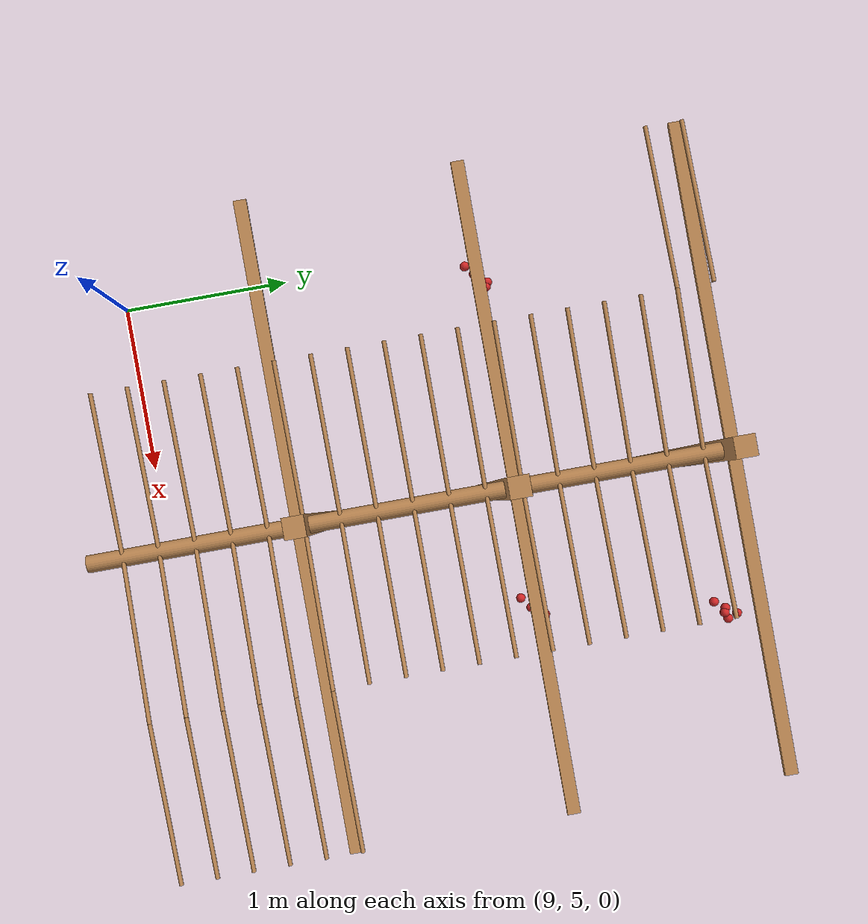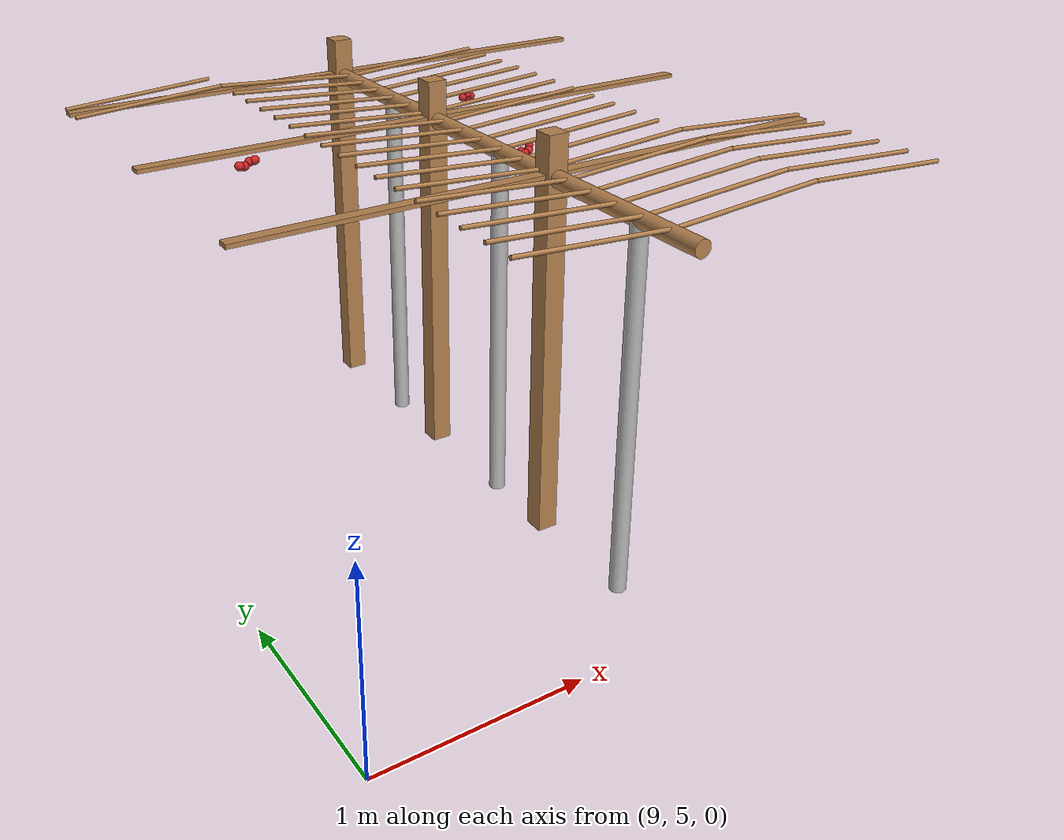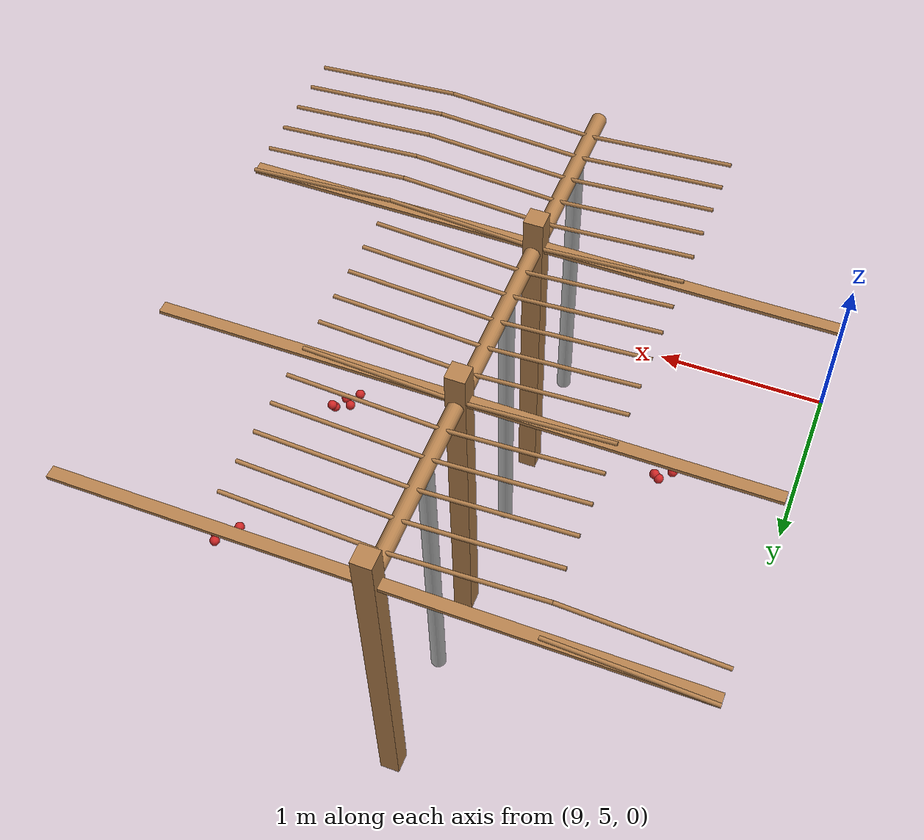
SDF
<sdf version="1.4">
 <model name="pergola">
  <include><name>post_83</name><pose>10.5 6.0 0 0 0 0</pose><uri>model://post</uri></include>
  <include><name>post_84</name><pose>10.5 7.0 0 0 0 0</pose><uri>model://post</uri></include>
  <include><name>post_85</name><pose>10.5 8.0 0 0 0 0</pose><uri>model://post</uri></include>
  <link name="beam_72">
   <pose>9.75 6.0 1.81 0 0 0</pose>
   <collision name="collision"><geometry><box><size>1.5 0.06 0.02</size></box></geometry></collision>
   <visual name="visual">
    <geometry><box><size>1.5 0.06 0.02</size></box></geometry>
    <material><script><name>Gazebo/Wood</name></script></material>
   </visual>
   <inertial>
    <mass>5</mass>
    <inertia>
     <ixx>0.0016666666666666668</ixx>
     <ixy>0.0</ixy>
     <ixz>0.0</ixz>
     <iyy>0.9390000000000001</iyy>
     <iyz>0.0</iyz>
     <izz>0.9376666666666665</izz>
    </inertia>
   </inertial>
  </link>
  <link name="beam_73">
   <pose>9.75 7.0 1.81 0 0 0</pose>
   <collision name="collision"><geometry><box><size>1.5 0.06 0.02</size></box></geometry></collision>
   <visual name="visual">
    <geometry><box><size>1.5 0.06 0.02</size></box></geometry>
    <material><script><name>Gazebo/Wood</name></script></material>
   </visual>
   <inertial>
    <mass>5</mass>
    <inertia>
     <ixx>0.0016666666666666668</ixx>
     <ixy>0.0</ixy>
     <ixz>0.0</ixz>
     <iyy>0.9390000000000001</iyy>
     <iyz>0.0</iyz>
     <izz>0.9376666666666665</izz>
    </inertia>
   </inertial>
  </link>
  <link name="beam_74">
   <pose>9.75 8.0 1.81 0 0 0</pose>
   <collision name="collision"><geometry><box><size>1.5 0.06 0.02</size></box></geometry></collision>
   <visual name="visual">
    <geometry><box><size>1.5 0.06 0.02</size></box></geometry>
    <material><script><name>Gazebo/Wood</name></script></material>
   </visual>
   <inertial>
    <mass>5</mass>
    <inertia>
     <ixx>0.0016666666666666668</ixx>
     <ixy>0.0</ixy>
     <ixz>0.0</ixz>
     <iyy>0.9390000000000001</iyy>
     <iyz>0.0</iyz>
     <izz>0.9376666666666665</izz>
    </inertia>
   </inertial>
  </link>
  <link name="beam_83">
   <pose>11.25 6.0 1.81 0 0 0</pose>
   <collision name="collision"><geometry><box><size>1.5 0.06 0.02</size></box></geometry></collision>
   <visual name="visual">
    <geometry><box><size>1.5 0.06 0.02</size></box></geometry>
    <material><script><name>Gazebo/Wood</name></script></material>
   </visual>
   <inertial>
    <mass>5</mass>
    <inertia>
     <ixx>0.0016666666666666668</ixx>
     <ixy>0.0</ixy>
     <ixz>0.0</ixz>
     <iyy>0.9390000000000001</iyy>
     <iyz>0.0</iyz>
     <izz>0.9376666666666665</izz>
    </inertia>
   </inertial>
  </link>
  <link name="beam_84">
   <pose>11.25 7.0 1.81 0 0 0</pose>
   <collision name="collision"><geometry><box><size>1.5 0.06 0.02</size></box></geometry></collision>
   <visual name="visual">
    <geometry><box><size>1.5 0.06 0.02</size></box></geometry>
    <material><script><name>Gazebo/Wood</name></script></material>
   </visual>
   <inertial>
    <mass>5</mass>
    <inertia>
     <ixx>0.0016666666666666668</ixx>
     <ixy>0.0</ixy>
     <ixz>0.0</ixz>
     <iyy>0.9390000000000001</iyy>
     <iyz>0.0</iyz>
     <izz>0.9376666666666665</izz>
    </inertia>
   </inertial>
  </link>
  <link name="beam_85">
   <pose>11.25 8.0 1.81 0 0 0</pose>
   <collision name="collision"><geometry><box><size>1.5 0.06 0.02</size></box></geometry></collision>
   <visual name="visual">
    <geometry><box><size>1.5 0.06 0.02</size></box></geometry>
    <material><script><name>Gazebo/Wood</name></script></material>
   </visual>
   <inertial>
    <mass>5</mass>
    <inertia>
     <ixx>0.0016666666666666668</ixx>
     <ixy>0.0</ixy>
     <ixz>0.0</ixz>
     <iyy>0.9390000000000001</iyy>
     <iyz>0.0</iyz>
     <izz>0.9376666666666665</izz>
    </inertia>
   </inertial>
  </link>
  <include><name>tree_75</name><pose>10.5 5.4 0 0 0 0</pose><uri>model://tree_trunk</uri></include>
  <include><name>tree_76</name><pose>10.5 6.4 0 0 0 0</pose><uri>model://tree_trunk</uri></include>
  <include><name>tree_77</name><pose>10.5 7.4 0 0 0 0</pose><uri>model://tree_trunk</uri></include>
  <link name="baseBranch_75">
   <pose>10.5 5.5 1.8 1.5707963267948966 0 0</pose>
   <collision name="collision">
    <geometry><cylinder><radius>0.04</radius><length>0.94</length></cylinder></geometry>
   </collision>
   <visual name="visual">
    <geometry><cylinder><radius>0.04</radius><length>0.94</length></cylinder></geometry>
    <material><script><name>Gazebo/WoodFloor</name></script></material>
   </visual>
   <inertial>
    <mass>10</mass>
    <inertia>
     <ixx>0.7403333333333334</ixx>
     <ixy>0.0</ixy>
     <ixz>0.0</ixz>
     <iyy>0.7403333333333334</iyy>
     <iyz>0.0</iyz>
     <izz>0.008</izz>
    </inertia>
   </inertial>
  </link>
  <link name="baseBranch_76">
   <pose>10.5 6.5 1.8 1.5707963267948966 0 0</pose>
   <collision name="collision">
    <geometry><cylinder><radius>0.04</radius><length>0.94</length></cylinder></geometry>
   </collision>
   <visual name="visual">
    <geometry><cylinder><radius>0.04</radius><length>0.94</length></cylinder></geometry>
    <material><script><name>Gazebo/WoodFloor</name></script></material>
   </visual>
   <inertial>
    <mass>10</mass>
    <inertia>
     <ixx>0.7403333333333334</ixx>
     <ixy>0.0</ixy>
     <ixz>0.0</ixz>
     <iyy>0.7403333333333334</iyy>
     <iyz>0.0</iyz>
     <izz>0.008</izz>
    </inertia>
   </inertial>
  </link>
  <link name="baseBranch_77">
   <pose>10.5 7.5 1.8 1.5707963267948966 0 0</pose>
   <collision name="collision">
    <geometry><cylinder><radius>0.04</radius><length>0.94</length></cylinder></geometry>
   </collision>
   <visual name="visual">
    <geometry><cylinder><radius>0.04</radius><length>0.94</length></cylinder></geometry>
    <material><script><name>Gazebo/WoodFloor</name></script></material>
   </visual>
   <inertial>
    <mass>10</mass>
    <inertia>
     <ixx>0.7403333333333334</ixx>
     <ixy>0.0</ixy>
     <ixz>0.0</ixz>
     <iyy>0.7403333333333334</iyy>
     <iyz>0.0</iyz>
     <izz>0.008</izz>
    </inertia>
   </inertial>
  </link>
  <link name="vine_783">
   <pose>10.125 5.196666666666666 1.85 0 -1.5042281630190728 0</pose>
   <collision name="collision">
    <geometry><cylinder><radius>0.01</radius><length>0.7516648189186453</length></cylinder></geometry>
   </collision>
   <visual name="visual">
    <geometry><cylinder><radius>0.01</radius><length>0.7516648189186453</length></cylinder></geometry>
    <material><script><name>Gazebo/WoodFloor</name></script></material>
   </visual>
   <inertial>
    <mass>5</mass>
    <inertia>
     <ixx>0.23554166666666657</ixx>
     <ixy>0.0</ixy>
     <ixz>0.0</ixz>
     <iyy>0.23554166666666657</iyy>
     <iyz>0.0</iyz>
     <izz>0.00025</izz>
    </inertia>
   </inertial>
  </link>
  <link name="vine_785">
   <pose>10.125 5.363333333333333 1.85 0 -1.5042281630190728 0</pose>
   <collision name="collision">
    <geometry><cylinder><radius>0.01</radius><length>0.7516648189186453</length></cylinder></geometry>
   </collision>
   <visual name="visual">
    <geometry><cylinder><radius>0.01</radius><length>0.7516648189186453</length></cylinder></geometry>
    <material><script><name>Gazebo/WoodFloor</name></script></material>
   </visual>
   <inertial>
    <mass>5</mass>
    <inertia>
     <ixx>0.23554166666666657</ixx>
     <ixy>0.0</ixy>
     <ixz>0.0</ixz>
     <iyy>0.23554166666666657</iyy>
     <iyz>0.0</iyz>
     <izz>0.00025</izz>
    </inertia>
   </inertial>
  </link>
  <link name="vine_787">
   <pose>10.125 5.53 1.85 0 -1.5042281630190728 0</pose>
   <collision name="collision">
    <geometry><cylinder><radius>0.01</radius><length>0.7516648189186453</length></cylinder></geometry>
   </collision>
   <visual name="visual">
    <geometry><cylinder><radius>0.01</radius><length>0.7516648189186453</length></cylinder></geometry>
    <material><script><name>Gazebo/WoodFloor</name></script></material>
   </visual>
   <inertial>
    <mass>5</mass>
    <inertia>
     <ixx>0.23554166666666657</ixx>
     <ixy>0.0</ixy>
     <ixz>0.0</ixz>
     <iyy>0.23554166666666657</iyy>
     <iyz>0.0</iyz>
     <izz>0.00025</izz>
    </inertia>
   </inertial>
  </link>
  <link name="vine_789">
   <pose>10.125 5.696666666666666 1.85 0 -1.5042281630190728 0</pose>
   <collision name="collision">
    <geometry><cylinder><radius>0.01</radius><length>0.7516648189186453</length></cylinder></geometry>
   </collision>
   <visual name="visual">
    <geometry><cylinder><radius>0.01</radius><length>0.7516648189186453</length></cylinder></geometry>
    <material><script><name>Gazebo/WoodFloor</name></script></material>
   </visual>
   <inertial>
    <mass>5</mass>
    <inertia>
     <ixx>0.23554166666666657</ixx>
     <ixy>0.0</ixy>
     <ixz>0.0</ixz>
     <iyy>0.23554166666666657</iyy>
     <iyz>0.0</iyz>
     <izz>0.00025</izz>
    </inertia>
   </inertial>
  </link>
  <link name="vine_791">
   <pose>10.125 5.863333333333333 1.85 0 -1.5042281630190728 0</pose>
   <collision name="collision">
    <geometry><cylinder><radius>0.01</radius><length>0.7516648189186453</length></cylinder></geometry>
   </collision>
   <visual name="visual">
    <geometry><cylinder><radius>0.01</radius><length>0.7516648189186453</length></cylinder></geometry>
    <material><script><name>Gazebo/WoodFloor</name></script></material>
   </visual>
   <inertial>
    <mass>5</mass>
    <inertia>
     <ixx>0.23554166666666657</ixx>
     <ixy>0.0</ixy>
     <ixz>0.0</ixz>
     <iyy>0.23554166666666657</iyy>
     <iyz>0.0</iyz>
     <izz>0.00025</izz>
    </inertia>
   </inertial>
  </link>
  <link name="vine_793">
   <pose>10.125 6.03 1.85 0 -1.5042281630190728 0</pose>
   <collision name="collision">
    <geometry><cylinder><radius>0.01</radius><length>0.7516648189186453</length></cylinder></geometry>
   </collision>
   <visual name="visual">
    <geometry><cylinder><radius>0.01</radius><length>0.7516648189186453</length></cylinder></geometry>
    <material><script><name>Gazebo/WoodFloor</name></script></material>
   </visual>
   <inertial>
    <mass>5</mass>
    <inertia>
     <ixx>0.23554166666666657</ixx>
     <ixy>0.0</ixy>
     <ixz>0.0</ixz>
     <iyy>0.23554166666666657</iyy>
     <iyz>0.0</iyz>
     <izz>0.00025</izz>
    </inertia>
   </inertial>
  </link>
  <link name="vine_795">
   <pose>10.125 6.196666666666666 1.85 0 -1.5042281630190728 0</pose>
   <collision name="collision">
    <geometry><cylinder><radius>0.01</radius><length>0.7516648189186453</length></cylinder></geometry>
   </collision>
   <visual name="visual">
    <geometry><cylinder><radius>0.01</radius><length>0.7516648189186453</length></cylinder></geometry>
    <material><script><name>Gazebo/WoodFloor</name></script></material>
   </visual>
   <inertial>
    <mass>5</mass>
    <inertia>
     <ixx>0.23554166666666657</ixx>
     <ixy>0.0</ixy>
     <ixz>0.0</ixz>
     <iyy>0.23554166666666657</iyy>
     <iyz>0.0</iyz>
     <izz>0.00025</izz>
    </inertia>
   </inertial>
  </link>
  <link name="vine_797">
   <pose>10.125 6.363333333333333 1.85 0 -1.5042281630190728 0</pose>
   <collision name="collision">
    <geometry><cylinder><radius>0.01</radius><length>0.7516648189186453</length></cylinder></geometry>
   </collision>
   <visual name="visual">
    <geometry><cylinder><radius>0.01</radius><length>0.7516648189186453</length></cylinder></geometry>
    <material><script><name>Gazebo/WoodFloor</name></script></material>
   </visual>
   <inertial>
    <mass>5</mass>
    <inertia>
     <ixx>0.23554166666666657</ixx>
     <ixy>0.0</ixy>
     <ixz>0.0</ixz>
     <iyy>0.23554166666666657</iyy>
     <iyz>0.0</iyz>
     <izz>0.00025</izz>
    </inertia>
   </inertial>
  </link>
  <link name="vine_799">
   <pose>10.125 6.53 1.85 0 -1.5042281630190728 0</pose>
   <collision name="collision">
    <geometry><cylinder><radius>0.01</radius><length>0.7516648189186453</length></cylinder></geometry>
   </collision>
   <visual name="visual">
    <geometry><cylinder><radius>0.01</radius><length>0.7516648189186453</length></cylinder></geometry>
    <material><script><name>Gazebo/WoodFloor</name></script></material>
   </visual>
   <inertial>
    <mass>5</mass>
    <inertia>
     <ixx>0.23554166666666657</ixx>
     <ixy>0.0</ixy>
     <ixz>0.0</ixz>
     <iyy>0.23554166666666657</iyy>
     <iyz>0.0</iyz>
     <izz>0.00025</izz>
    </inertia>
   </inertial>
  </link>
  <link name="vine_801">
   <pose>10.125 6.696666666666666 1.85 0 -1.5042281630190728 0</pose>
   <collision name="collision">
    <geometry><cylinder><radius>0.01</radius><length>0.7516648189186453</length></cylinder></geometry>
   </collision>
   <visual name="visual">
    <geometry><cylinder><radius>0.01</radius><length>0.7516648189186453</length></cylinder></geometry>
    <material><script><name>Gazebo/WoodFloor</name></script></material>
   </visual>
   <inertial>
    <mass>5</mass>
    <inertia>
     <ixx>0.23554166666666657</ixx>
     <ixy>0.0</ixy>
     <ixz>0.0</ixz>
     <iyy>0.23554166666666657</iyy>
     <iyz>0.0</iyz>
     <izz>0.00025</izz>
    </inertia>
   </inertial>
  </link>
  <link name="vine_803">
   <pose>10.125 6.863333333333333 1.85 0 -1.5042281630190728 0</pose>
   <collision name="collision">
    <geometry><cylinder><radius>0.01</radius><length>0.7516648189186453</length></cylinder></geometry>
   </collision>
   <visual name="visual">
    <geometry><cylinder><radius>0.01</radius><length>0.7516648189186453</length></cylinder></geometry>
    <material><script><name>Gazebo/WoodFloor</name></script></material>
   </visual>
   <inertial>
    <mass>5</mass>
    <inertia>
     <ixx>0.23554166666666657</ixx>
     <ixy>0.0</ixy>
     <ixz>0.0</ixz>
     <iyy>0.23554166666666657</iyy>
     <iyz>0.0</iyz>
     <izz>0.00025</izz>
    </inertia>
   </inertial>
  </link>
  <link name="vine_805">
   <pose>10.125 7.03 1.85 0 -1.5042281630190728 0</pose>
   <collision name="collision">
    <geometry><cylinder><radius>0.01</radius><length>0.7516648189186453</length></cylinder></geometry>
   </collision>
   <visual name="visual">
    <geometry><cylinder><radius>0.01</radius><length>0.7516648189186453</length></cylinder></geometry>
    <material><script><name>Gazebo/WoodFloor</name></script></material>
   </visual>
   <inertial>
    <mass>5</mass>
    <inertia>
     <ixx>0.23554166666666657</ixx>
     <ixy>0.0</ixy>
     <ixz>0.0</ixz>
     <iyy>0.23554166666666657</iyy>
     <iyz>0.0</iyz>
     <izz>0.00025</izz>
    </inertia>
   </inertial>
  </link>
  <link name="vine_807">
   <pose>10.125 7.196666666666666 1.85 0 -1.5042281630190728 0</pose>
   <collision name="collision">
    <geometry><cylinder><radius>0.01</radius><length>0.7516648189186453</length></cylinder></geometry>
   </collision>
   <visual name="visual">
    <geometry><cylinder><radius>0.01</radius><length>0.7516648189186453</length></cylinder></geometry>
    <material><script><name>Gazebo/WoodFloor</name></script></material>
   </visual>
   <inertial>
    <mass>5</mass>
    <inertia>
     <ixx>0.23554166666666657</ixx>
     <ixy>0.0</ixy>
     <ixz>0.0</ixz>
     <iyy>0.23554166666666657</iyy>
     <iyz>0.0</iyz>
     <izz>0.00025</izz>
    </inertia>
   </inertial>
  </link>
  <link name="vine_809">
   <pose>10.125 7.363333333333333 1.85 0 -1.5042281630190728 0</pose>
   <collision name="collision">
    <geometry><cylinder><radius>0.01</radius><length>0.7516648189186453</length></cylinder></geometry>
   </collision>
   <visual name="visual">
    <geometry><cylinder><radius>0.01</radius><length>0.7516648189186453</length></cylinder></geometry>
    <material><script><name>Gazebo/WoodFloor</name></script></material>
   </visual>
   <inertial>
    <mass>5</mass>
    <inertia>
     <ixx>0.23554166666666657</ixx>
     <ixy>0.0</ixy>
     <ixz>0.0</ixz>
     <iyy>0.23554166666666657</iyy>
     <iyz>0.0</iyz>
     <izz>0.00025</izz>
    </inertia>
   </inertial>
  </link>
  <link name="vine_811">
   <pose>10.125 7.53 1.85 0 -1.5042281630190728 0</pose>
   <collision name="collision">
    <geometry><cylinder><radius>0.01</radius><length>0.7516648189186453</length></cylinder></geometry>
   </collision>
   <visual name="visual">
    <geometry><cylinder><radius>0.01</radius><length>0.7516648189186453</length></cylinder></geometry>
    <material><script><name>Gazebo/WoodFloor</name></script></material>
   </visual>
   <inertial>
    <mass>5</mass>
    <inertia>
     <ixx>0.23554166666666657</ixx>
     <ixy>0.0</ixy>
     <ixz>0.0</ixz>
     <iyy>0.23554166666666657</iyy>
     <iyz>0.0</iyz>
     <izz>0.00025</izz>
    </inertia>
   </inertial>
  </link>
  <link name="vine_813">
   <pose>10.125 7.696666666666666 1.85 0 -1.5042281630190728 0</pose>
   <collision name="collision">
    <geometry><cylinder><radius>0.01</radius><length>0.7516648189186453</length></cylinder></geometry>
   </collision>
   <visual name="visual">
    <geometry><cylinder><radius>0.01</radius><length>0.7516648189186453</length></cylinder></geometry>
    <material><script><name>Gazebo/WoodFloor</name></script></material>
   </visual>
   <inertial>
    <mass>5</mass>
    <inertia>
     <ixx>0.23554166666666657</ixx>
     <ixy>0.0</ixy>
     <ixz>0.0</ixz>
     <iyy>0.23554166666666657</iyy>
     <iyz>0.0</iyz>
     <izz>0.00025</izz>
    </inertia>
   </inertial>
  </link>
  <link name="vine_814">
   <pose>9.375 7.863333333333333 1.85 0 1.5042281630190728 0</pose>
   <collision name="collision">
    <geometry><cylinder><radius>0.01</radius><length>0.7516648189186453</length></cylinder></geometry>
   </collision>
   <visual name="visual">
    <geometry><cylinder><radius>0.01</radius><length>0.7516648189186453</length></cylinder></geometry>
    <material><script><name>Gazebo/WoodFloor</name></script></material>
   </visual>
   <inertial>
    <mass>5</mass>
    <inertia>
     <ixx>0.23554166666666657</ixx>
     <ixy>0.0</ixy>
     <ixz>0.0</ixz>
     <iyy>0.23554166666666657</iyy>
     <iyz>0.0</iyz>
     <izz>0.00025</izz>
    </inertia>
   </inertial>
  </link>
  <link name="vine_815">
   <pose>10.125 7.863333333333333 1.85 0 -1.5042281630190728 0</pose>
   <collision name="collision">
    <geometry><cylinder><radius>0.01</radius><length>0.7516648189186453</length></cylinder></geometry>
   </collision>
   <visual name="visual">
    <geometry><cylinder><radius>0.01</radius><length>0.7516648189186453</length></cylinder></geometry>
    <material><script><name>Gazebo/WoodFloor</name></script></material>
   </visual>
   <inertial>
    <mass>5</mass>
    <inertia>
     <ixx>0.23554166666666657</ixx>
     <ixy>0.0</ixy>
     <ixz>0.0</ixz>
     <iyy>0.23554166666666657</iyy>
     <iyz>0.0</iyz>
     <izz>0.00025</izz>
    </inertia>
   </inertial>
  </link>
  <link name="vine_816">
   <pose>9.375 8.03 1.85 0 1.5042281630190728 0</pose>
   <collision name="collision">
    <geometry><cylinder><radius>0.01</radius><length>0.7516648189186453</length></cylinder></geometry>
   </collision>
   <visual name="visual">
    <geometry><cylinder><radius>0.01</radius><length>0.7516648189186453</length></cylinder></geometry>
    <material><script><name>Gazebo/WoodFloor</name></script></material>
   </visual>
   <inertial>
    <mass>5</mass>
    <inertia>
     <ixx>0.23554166666666657</ixx>
     <ixy>0.0</ixy>
     <ixz>0.0</ixz>
     <iyy>0.23554166666666657</iyy>
     <iyz>0.0</iyz>
     <izz>0.00025</izz>
    </inertia>
   </inertial>
  </link>
  <link name="vine_902">
   <pose>10.875 5.196666666666666 1.85 0 1.5042281630190728 0</pose>
   <collision name="collision">
    <geometry><cylinder><radius>0.01</radius><length>0.7516648189186453</length></cylinder></geometry>
   </collision>
   <visual name="visual">
    <geometry><cylinder><radius>0.01</radius><length>0.7516648189186453</length></cylinder></geometry>
    <material><script><name>Gazebo/WoodFloor</name></script></material>
   </visual>
   <inertial>
    <mass>5</mass>
    <inertia>
     <ixx>0.23554166666666657</ixx>
     <ixy>0.0</ixy>
     <ixz>0.0</ixz>
     <iyy>0.23554166666666657</iyy>
     <iyz>0.0</iyz>
     <izz>0.00025</izz>
    </inertia>
   </inertial>
  </link>
  <link name="vine_903">
   <pose>11.625 5.196666666666666 1.85 0 -1.5042281630190728 0</pose>
   <collision name="collision">
    <geometry><cylinder><radius>0.01</radius><length>0.7516648189186453</length></cylinder></geometry>
   </collision>
   <visual name="visual">
    <geometry><cylinder><radius>0.01</radius><length>0.7516648189186453</length></cylinder></geometry>
    <material><script><name>Gazebo/WoodFloor</name></script></material>
   </visual>
   <inertial>
    <mass>5</mass>
    <inertia>
     <ixx>0.23554166666666657</ixx>
     <ixy>0.0</ixy>
     <ixz>0.0</ixz>
     <iyy>0.23554166666666657</iyy>
     <iyz>0.0</iyz>
     <izz>0.00025</izz>
    </inertia>
   </inertial>
  </link>
  <link name="vine_904">
   <pose>10.875 5.363333333333333 1.85 0 1.5042281630190728 0</pose>
   <collision name="collision">
    <geometry><cylinder><radius>0.01</radius><length>0.7516648189186453</length></cylinder></geometry>
   </collision>
   <visual name="visual">
    <geometry><cylinder><radius>0.01</radius><length>0.7516648189186453</length></cylinder></geometry>
    <material><script><name>Gazebo/WoodFloor</name></script></material>
   </visual>
   <inertial>
    <mass>5</mass>
    <inertia>
     <ixx>0.23554166666666657</ixx>
     <ixy>0.0</ixy>
     <ixz>0.0</ixz>
     <iyy>0.23554166666666657</iyy>
     <iyz>0.0</iyz>
     <izz>0.00025</izz>
    </inertia>
   </inertial>
  </link>
  <link name="vine_905">
   <pose>11.625 5.363333333333333 1.85 0 -1.5042281630190728 0</pose>
   <collision name="collision">
    <geometry><cylinder><radius>0.01</radius><length>0.7516648189186453</length></cylinder></geometry>
   </collision>
   <visual name="visual">
    <geometry><cylinder><radius>0.01</radius><length>0.7516648189186453</length></cylinder></geometry>
    <material><script><name>Gazebo/WoodFloor</name></script></material>
   </visual>
   <inertial>
    <mass>5</mass>
    <inertia>
     <ixx>0.23554166666666657</ixx>
     <ixy>0.0</ixy>
     <ixz>0.0</ixz>
     <iyy>0.23554166666666657</iyy>
     <iyz>0.0</iyz>
     <izz>0.00025</izz>
    </inertia>
   </inertial>
  </link>
  <link name="vine_906">
   <pose>10.875 5.53 1.85 0 1.5042281630190728 0</pose>
   <collision name="collision">
    <geometry><cylinder><radius>0.01</radius><length>0.7516648189186453</length></cylinder></geometry>
   </collision>
   <visual name="visual">
    <geometry><cylinder><radius>0.01</radius><length>0.7516648189186453</length></cylinder></geometry>
    <material><script><name>Gazebo/WoodFloor</name></script></material>
   </visual>
   <inertial>
    <mass>5</mass>
    <inertia>
     <ixx>0.23554166666666657</ixx>
     <ixy>0.0</ixy>
     <ixz>0.0</ixz>
     <iyy>0.23554166666666657</iyy>
     <iyz>0.0</iyz>
     <izz>0.00025</izz>
    </inertia>
   </inertial>
  </link>
  <link name="vine_907">
   <pose>11.625 5.53 1.85 0 -1.5042281630190728 0</pose>
   <collision name="collision">
    <geometry><cylinder><radius>0.01</radius><length>0.7516648189186453</length></cylinder></geometry>
   </collision>
   <visual name="visual">
    <geometry><cylinder><radius>0.01</radius><length>0.7516648189186453</length></cylinder></geometry>
    <material><script><name>Gazebo/WoodFloor</name></script></material>
   </visual>
   <inertial>
    <mass>5</mass>
    <inertia>
     <ixx>0.23554166666666657</ixx>
     <ixy>0.0</ixy>
     <ixz>0.0</ixz>
     <iyy>0.23554166666666657</iyy>
     <iyz>0.0</iyz>
     <izz>0.00025</izz>
    </inertia>
   </inertial>
  </link>
  <link name="vine_908">
   <pose>10.875 5.696666666666666 1.85 0 1.5042281630190728 0</pose>
   <collision name="collision">
    <geometry><cylinder><radius>0.01</radius><length>0.7516648189186453</length></cylinder></geometry>
   </collision>
   <visual name="visual">
    <geometry><cylinder><radius>0.01</radius><length>0.7516648189186453</length></cylinder></geometry>
    <material><script><name>Gazebo/WoodFloor</name></script></material>
   </visual>
   <inertial>
    <mass>5</mass>
    <inertia>
     <ixx>0.23554166666666657</ixx>
     <ixy>0.0</ixy>
     <ixz>0.0</ixz>
     <iyy>0.23554166666666657</iyy>
     <iyz>0.0</iyz>
     <izz>0.00025</izz>
    </inertia>
   </inertial>
  </link>
  <link name="vine_909">
   <pose>11.625 5.696666666666666 1.85 0 -1.5042281630190728 0</pose>
   <collision name="collision">
    <geometry><cylinder><radius>0.01</radius><length>0.7516648189186453</length></cylinder></geometry>
   </collision>
   <visual name="visual">
    <geometry><cylinder><radius>0.01</radius><length>0.7516648189186453</length></cylinder></geometry>
    <material><script><name>Gazebo/WoodFloor</name></script></material>
   </visual>
   <inertial>
    <mass>5</mass>
    <inertia>
     <ixx>0.23554166666666657</ixx>
     <ixy>0.0</ixy>
     <ixz>0.0</ixz>
     <iyy>0.23554166666666657</iyy>
     <iyz>0.0</iyz>
     <izz>0.00025</izz>
    </inertia>
   </inertial>
  </link>
  <link name="vine_910">
   <pose>10.875 5.863333333333333 1.85 0 1.5042281630190728 0</pose>
   <collision name="collision">
    <geometry><cylinder><radius>0.01</radius><length>0.7516648189186453</length></cylinder></geometry>
   </collision>
   <visual name="visual">
    <geometry><cylinder><radius>0.01</radius><length>0.7516648189186453</length></cylinder></geometry>
    <material><script><name>Gazebo/WoodFloor</name></script></material>
   </visual>
   <inertial>
    <mass>5</mass>
    <inertia>
     <ixx>0.23554166666666657</ixx>
     <ixy>0.0</ixy>
     <ixz>0.0</ixz>
     <iyy>0.23554166666666657</iyy>
     <iyz>0.0</iyz>
     <izz>0.00025</izz>
    </inertia>
   </inertial>
  </link>
  <link name="vine_911">
   <pose>11.625 5.863333333333333 1.85 0 -1.5042281630190728 0</pose>
   <collision name="collision">
    <geometry><cylinder><radius>0.01</radius><length>0.7516648189186453</length></cylinder></geometry>
   </collision>
   <visual name="visual">
    <geometry><cylinder><radius>0.01</radius><length>0.7516648189186453</length></cylinder></geometry>
    <material><script><name>Gazebo/WoodFloor</name></script></material>
   </visual>
   <inertial>
    <mass>5</mass>
    <inertia>
     <ixx>0.23554166666666657</ixx>
     <ixy>0.0</ixy>
     <ixz>0.0</ixz>
     <iyy>0.23554166666666657</iyy>
     <iyz>0.0</iyz>
     <izz>0.00025</izz>
    </inertia>
   </inertial>
  </link>
  <link name="vine_912">
   <pose>10.875 6.03 1.85 0 1.5042281630190728 0</pose>
   <collision name="collision">
    <geometry><cylinder><radius>0.01</radius><length>0.7516648189186453</length></cylinder></geometry>
   </collision>
   <visual name="visual">
    <geometry><cylinder><radius>0.01</radius><length>0.7516648189186453</length></cylinder></geometry>
    <material><script><name>Gazebo/WoodFloor</name></script></material>
   </visual>
   <inertial>
    <mass>5</mass>
    <inertia>
     <ixx>0.23554166666666657</ixx>
     <ixy>0.0</ixy>
     <ixz>0.0</ixz>
     <iyy>0.23554166666666657</iyy>
     <iyz>0.0</iyz>
     <izz>0.00025</izz>
    </inertia>
   </inertial>
  </link>
  <link name="vine_913">
   <pose>11.625 6.03 1.85 0 -1.5042281630190728 0</pose>
   <collision name="collision">
    <geometry><cylinder><radius>0.01</radius><length>0.7516648189186453</length></cylinder></geometry>
   </collision>
   <visual name="visual">
    <geometry><cylinder><radius>0.01</radius><length>0.7516648189186453</length></cylinder></geometry>
    <material><script><name>Gazebo/WoodFloor</name></script></material>
   </visual>
   <inertial>
    <mass>5</mass>
    <inertia>
     <ixx>0.23554166666666657</ixx>
     <ixy>0.0</ixy>
     <ixz>0.0</ixz>
     <iyy>0.23554166666666657</iyy>
     <iyz>0.0</iyz>
     <izz>0.00025</izz>
    </inertia>
   </inertial>
  </link>
  <link name="vine_914">
   <pose>10.875 6.196666666666666 1.85 0 1.5042281630190728 0</pose>
   <collision name="collision">
    <geometry><cylinder><radius>0.01</radius><length>0.7516648189186453</length></cylinder></geometry>
   </collision>
   <visual name="visual">
    <geometry><cylinder><radius>0.01</radius><length>0.7516648189186453</length></cylinder></geometry>
    <material><script><name>Gazebo/WoodFloor</name></script></material>
   </visual>
   <inertial>
    <mass>5</mass>
    <inertia>
     <ixx>0.23554166666666657</ixx>
     <ixy>0.0</ixy>
     <ixz>0.0</ixz>
     <iyy>0.23554166666666657</iyy>
     <iyz>0.0</iyz>
     <izz>0.00025</izz>
    </inertia>
   </inertial>
  </link>
  <link name="vine_916">
   <pose>10.875 6.363333333333333 1.85 0 1.5042281630190728 0</pose>
   <collision name="collision">
    <geometry><cylinder><radius>0.01</radius><length>0.7516648189186453</length></cylinder></geometry>
   </collision>
   <visual name="visual">
    <geometry><cylinder><radius>0.01</radius><length>0.7516648189186453</length></cylinder></geometry>
    <material><script><name>Gazebo/WoodFloor</name></script></material>
   </visual>
   <inertial>
    <mass>5</mass>
    <inertia>
     <ixx>0.23554166666666657</ixx>
     <ixy>0.0</ixy>
     <ixz>0.0</ixz>
     <iyy>0.23554166666666657</iyy>
     <iyz>0.0</iyz>
     <izz>0.00025</izz>
    </inertia>
   </inertial>
  </link>
  <link name="vine_918">
   <pose>10.875 6.53 1.85 0 1.5042281630190728 0</pose>
   <collision name="collision">
    <geometry><cylinder><radius>0.01</radius><length>0.7516648189186453</length></cylinder></geometry>
   </collision>
   <visual name="visual">
    <geometry><cylinder><radius>0.01</radius><length>0.7516648189186453</length></cylinder></geometry>
    <material><script><name>Gazebo/WoodFloor</name></script></material>
   </visual>
   <inertial>
    <mass>5</mass>
    <inertia>
     <ixx>0.23554166666666657</ixx>
     <ixy>0.0</ixy>
     <ixz>0.0</ixz>
     <iyy>0.23554166666666657</iyy>
     <iyz>0.0</iyz>
     <izz>0.00025</izz>
    </inertia>
   </inertial>
  </link>
  <link name="vine_920">
   <pose>10.875 6.696666666666666 1.85 0 1.5042281630190728 0</pose>
   <collision name="collision">
    <geometry><cylinder><radius>0.01</radius><length>0.7516648189186453</length></cylinder></geometry>
   </collision>
   <visual name="visual">
    <geometry><cylinder><radius>0.01</radius><length>0.7516648189186453</length></cylinder></geometry>
    <material><script><name>Gazebo/WoodFloor</name></script></material>
   </visual>
   <inertial>
    <mass>5</mass>
    <inertia>
     <ixx>0.23554166666666657</ixx>
     <ixy>0.0</ixy>
     <ixz>0.0</ixz>
     <iyy>0.23554166666666657</iyy>
     <iyz>0.0</iyz>
     <izz>0.00025</izz>
    </inertia>
   </inertial>
  </link>
  <link name="vine_922">
   <pose>10.875 6.863333333333333 1.85 0 1.5042281630190728 0</pose>
   <collision name="collision">
    <geometry><cylinder><radius>0.01</radius><length>0.7516648189186453</length></cylinder></geometry>
   </collision>
   <visual name="visual">
    <geometry><cylinder><radius>0.01</radius><length>0.7516648189186453</length></cylinder></geometry>
    <material><script><name>Gazebo/WoodFloor</name></script></material>
   </visual>
   <inertial>
    <mass>5</mass>
    <inertia>
     <ixx>0.23554166666666657</ixx>
     <ixy>0.0</ixy>
     <ixz>0.0</ixz>
     <iyy>0.23554166666666657</iyy>
     <iyz>0.0</iyz>
     <izz>0.00025</izz>
    </inertia>
   </inertial>
  </link>
  <link name="vine_924">
   <pose>10.875 7.03 1.85 0 1.5042281630190728 0</pose>
   <collision name="collision">
    <geometry><cylinder><radius>0.01</radius><length>0.7516648189186453</length></cylinder></geometry>
   </collision>
   <visual name="visual">
    <geometry><cylinder><radius>0.01</radius><length>0.7516648189186453</length></cylinder></geometry>
    <material><script><name>Gazebo/WoodFloor</name></script></material>
   </visual>
   <inertial>
    <mass>5</mass>
    <inertia>
     <ixx>0.23554166666666657</ixx>
     <ixy>0.0</ixy>
     <ixz>0.0</ixz>
     <iyy>0.23554166666666657</iyy>
     <iyz>0.0</iyz>
     <izz>0.00025</izz>
    </inertia>
   </inertial>
  </link>
  <link name="vine_926">
   <pose>10.875 7.196666666666666 1.85 0 1.5042281630190728 0</pose>
   <collision name="collision">
    <geometry><cylinder><radius>0.01</radius><length>0.7516648189186453</length></cylinder></geometry>
   </collision>
   <visual name="visual">
    <geometry><cylinder><radius>0.01</radius><length>0.7516648189186453</length></cylinder></geometry>
    <material><script><name>Gazebo/WoodFloor</name></script></material>
   </visual>
   <inertial>
    <mass>5</mass>
    <inertia>
     <ixx>0.23554166666666657</ixx>
     <ixy>0.0</ixy>
     <ixz>0.0</ixz>
     <iyy>0.23554166666666657</iyy>
     <iyz>0.0</iyz>
     <izz>0.00025</izz>
    </inertia>
   </inertial>
  </link>
  <link name="vine_928">
   <pose>10.875 7.363333333333333 1.85 0 1.5042281630190728 0</pose>
   <collision name="collision">
    <geometry><cylinder><radius>0.01</radius><length>0.7516648189186453</length></cylinder></geometry>
   </collision>
   <visual name="visual">
    <geometry><cylinder><radius>0.01</radius><length>0.7516648189186453</length></cylinder></geometry>
    <material><script><name>Gazebo/WoodFloor</name></script></material>
   </visual>
   <inertial>
    <mass>5</mass>
    <inertia>
     <ixx>0.23554166666666657</ixx>
     <ixy>0.0</ixy>
     <ixz>0.0</ixz>
     <iyy>0.23554166666666657</iyy>
     <iyz>0.0</iyz>
     <izz>0.00025</izz>
    </inertia>
   </inertial>
  </link>
  <link name="vine_930">
   <pose>10.875 7.53 1.85 0 1.5042281630190728 0</pose>
   <collision name="collision">
    <geometry><cylinder><radius>0.01</radius><length>0.7516648189186453</length></cylinder></geometry>
   </collision>
   <visual name="visual">
    <geometry><cylinder><radius>0.01</radius><length>0.7516648189186453</length></cylinder></geometry>
    <material><script><name>Gazebo/WoodFloor</name></script></material>
   </visual>
   <inertial>
    <mass>5</mass>
    <inertia>
     <ixx>0.23554166666666657</ixx>
     <ixy>0.0</ixy>
     <ixz>0.0</ixz>
     <iyy>0.23554166666666657</iyy>
     <iyz>0.0</iyz>
     <izz>0.00025</izz>
    </inertia>
   </inertial>
  </link>
  <link name="vine_932">
   <pose>10.875 7.696666666666666 1.85 0 1.5042281630190728 0</pose>
   <collision name="collision">
    <geometry><cylinder><radius>0.01</radius><length>0.7516648189186453</length></cylinder></geometry>
   </collision>
   <visual name="visual">
    <geometry><cylinder><radius>0.01</radius><length>0.7516648189186453</length></cylinder></geometry>
    <material><script><name>Gazebo/WoodFloor</name></script></material>
   </visual>
   <inertial>
    <mass>5</mass>
    <inertia>
     <ixx>0.23554166666666657</ixx>
     <ixy>0.0</ixy>
     <ixz>0.0</ixz>
     <iyy>0.23554166666666657</iyy>
     <iyz>0.0</iyz>
     <izz>0.00025</izz>
    </inertia>
   </inertial>
  </link>
  <link name="vine_934">
   <pose>10.875 7.863333333333333 1.85 0 1.5042281630190728 0</pose>
   <collision name="collision">
    <geometry><cylinder><radius>0.01</radius><length>0.7516648189186453</length></cylinder></geometry>
   </collision>
   <visual name="visual">
    <geometry><cylinder><radius>0.01</radius><length>0.7516648189186453</length></cylinder></geometry>
    <material><script><name>Gazebo/WoodFloor</name></script></material>
   </visual>
   <inertial>
    <mass>5</mass>
    <inertia>
     <ixx>0.23554166666666657</ixx>
     <ixy>0.0</ixy>
     <ixz>0.0</ixz>
     <iyy>0.23554166666666657</iyy>
     <iyz>0.0</iyz>
     <izz>0.00025</izz>
    </inertia>
   </inertial>
  </link>
  <link name="fruit_25">
   <pose>11.025416563180228 6.958152280464595 1.5426840258259777 0 0 0</pose>
   <collision name="fruit_collision_25"><geometry><sphere><radius>0.022</radius></sphere></geometry></collision>
   <visual name="visual">
    <geometry><sphere><radius>0.022</radius></sphere></geometry>
    <material><script><name>Gazebo/Red</name></script></material>
   </visual>
   <inertial>
    <mass>0.05</mass>
    <inertia>
     <ixx>9.679999999999999e-06</ixx>
     <ixy>0.0</ixy>
     <ixz>0.0</ixz>
     <iyy>9.679999999999999e-06</iyy>
     <iyz>0.0</iyz>
     <izz>9.679999999999999e-06</izz>
    </inertia>
   </inertial>
   <sensor name="fruit_contact_25" type="contact">
    <contact><collision>fruit_collision_25</collision></contact>
   </sensor>
  </link>
  <link name="fruit_35">
   <pose>9.463236742469865 6.955168874515457 1.7567938169470538 0 0 0</pose>
   <collision name="fruit_collision_35"><geometry><sphere><radius>0.022</radius></sphere></geometry></collision>
   <visual name="visual">
    <geometry><sphere><radius>0.022</radius></sphere></geometry>
    <material><script><name>Gazebo/Red</name></script></material>
   </visual>
   <inertial>
    <mass>0.05</mass>
    <inertia>
     <ixx>9.679999999999999e-06</ixx>
     <ixy>0.0</ixy>
     <ixz>0.0</ixz>
     <iyy>9.679999999999999e-06</iyy>
     <iyz>0.0</iyz>
     <izz>9.679999999999999e-06</izz>
    </inertia>
   </inertial>
   <sensor name="fruit_contact_35" type="contact">
    <contact><collision>fruit_collision_35</collision></contact>
   </sensor>
  </link>
  <link name="fruit_106">
   <pose>11.19834525230784 7.848973193609858 1.599120822370034 0 0 0</pose>
   <collision name="fruit_collision_106"><geometry><sphere><radius>0.022</radius></sphere></geometry></collision>
   <visual name="visual">
    <geometry><sphere><radius>0.022</radius></sphere></geometry>
    <material><script><name>Gazebo/Red</name></script></material>
   </visual>
   <inertial>
    <mass>0.05</mass>
    <inertia>
     <ixx>9.679999999999999e-06</ixx>
     <ixy>0.0</ixy>
     <ixz>0.0</ixz>
     <iyy>9.679999999999999e-06</iyy>
     <iyz>0.0</iyz>
     <izz>9.679999999999999e-06</izz>
    </inertia>
   </inertial>
   <sensor name="fruit_contact_106" type="contact">
    <contact><collision>fruit_collision_106</collision></contact>
   </sensor>
  </link>
  <link name="fruit_140">
   <pose>11.259956904869385 7.895388177718479 1.5772052658113802 0 0 0</pose>
   <collision name="fruit_collision_140"><geometry><sphere><radius>0.022</radius></sphere></geometry></collision>
   <visual name="visual">
    <geometry><sphere><radius>0.022</radius></sphere></geometry>
    <material><script><name>Gazebo/Red</name></script></material>
   </visual>
   <inertial>
    <mass>0.05</mass>
    <inertia>
     <ixx>9.679999999999999e-06</ixx>
     <ixy>0.0</ixy>
     <ixz>0.0</ixz>
     <iyy>9.679999999999999e-06</iyy>
     <iyz>0.0</iyz>
     <izz>9.679999999999999e-06</izz>
    </inertia>
   </inertial>
   <sensor name="fruit_contact_140" type="contact">
    <contact><collision>fruit_collision_140</collision></contact>
   </sensor>
  </link>
  <link name="fruit_160">
   <pose>11.077797065545008 6.999335545937444 1.5386797452973853 0 0 0</pose>
   <collision name="fruit_collision_160"><geometry><sphere><radius>0.022</radius></sphere></geometry></collision>
   <visual name="visual">
    <geometry><sphere><radius>0.022</radius></sphere></geometry>
    <material><script><name>Gazebo/Red</name></script></material>
   </visual>
   <inertial>
    <mass>0.05</mass>
    <inertia>
     <ixx>9.679999999999999e-06</ixx>
     <ixy>0.0</ixy>
     <ixz>0.0</ixz>
     <iyy>9.679999999999999e-06</iyy>
     <iyz>0.0</iyz>
     <izz>9.679999999999999e-06</izz>
    </inertia>
   </inertial>
   <sensor name="fruit_contact_160" type="contact">
    <contact><collision>fruit_collision_160</collision></contact>
   </sensor>
  </link>
  <link name="fruit_213">
   <pose>9.570841294338084 7.034807298477722 1.7447124758767543 0 0 0</pose>
   <collision name="fruit_collision_213"><geometry><sphere><radius>0.022</radius></sphere></geometry></collision>
   <visual name="visual">
    <geometry><sphere><radius>0.022</radius></sphere></geometry>
    <material><script><name>Gazebo/Red</name></script></material>
   </visual>
   <inertial>
    <mass>0.05</mass>
    <inertia>
     <ixx>9.679999999999999e-06</ixx>
     <ixy>0.0</ixy>
     <ixz>0.0</ixz>
     <iyy>9.679999999999999e-06</iyy>
     <iyz>0.0</iyz>
     <izz>9.679999999999999e-06</izz>
    </inertia>
   </inertial>
   <sensor name="fruit_contact_213" type="contact">
    <contact><collision>fruit_collision_213</collision></contact>
   </sensor>
  </link>
  <link name="fruit_220">
   <pose>11.236877070493957 7.899833352053062 1.5889278127209563 0 0 0</pose>
   <collision name="fruit_collision_220"><geometry><sphere><radius>0.022</radius></sphere></geometry></collision>
   <visual name="visual">
    <geometry><sphere><radius>0.022</radius></sphere></geometry>
    <material><script><name>Gazebo/Red</name></script></material>
   </visual>
   <inertial>
    <mass>0.05</mass>
    <inertia>
     <ixx>9.679999999999999e-06</ixx>
     <ixy>0.0</ixy>
     <ixz>0.0</ixz>
     <iyy>9.679999999999999e-06</iyy>
     <iyz>0.0</iyz>
     <izz>9.679999999999999e-06</izz>
    </inertia>
   </inertial>
   <sensor name="fruit_contact_220" type="contact">
    <contact><collision>fruit_collision_220</collision></contact>
   </sensor>
  </link>
  <link name="fruit_245">
   <pose>11.047498929741312 7.024108246691429 1.53070995622541 0 0 0</pose>
   <collision name="fruit_collision_245"><geometry><sphere><radius>0.022</radius></sphere></geometry></collision>
   <visual name="visual">
    <geometry><sphere><radius>0.022</radius></sphere></geometry>
    <material><script><name>Gazebo/Red</name></script></material>
   </visual>
   <inertial>
    <mass>0.05</mass>
    <inertia>
     <ixx>9.679999999999999e-06</ixx>
     <ixy>0.0</ixy>
     <ixz>0.0</ixz>
     <iyy>9.679999999999999e-06</iyy>
     <iyz>0.0</iyz>
     <izz>9.679999999999999e-06</izz>
    </inertia>
   </inertial>
   <sensor name="fruit_contact_245" type="contact">
    <contact><collision>fruit_collision_245</collision></contact>
   </sensor>
  </link>
  <link name="fruit_268">
   <pose>11.257156130926116 7.890756762580374 1.598845166790842 0 0 0</pose>
   <collision name="fruit_collision_268"><geometry><sphere><radius>0.022</radius></sphere></geometry></collision>
   <visual name="visual">
    <geometry><sphere><radius>0.022</radius></sphere></geometry>
    <material><script><name>Gazebo/Red</name></script></material>
   </visual>
   <inertial>
    <mass>0.05</mass>
    <inertia>
     <ixx>9.679999999999999e-06</ixx>
     <ixy>0.0</ixy>
     <ixz>0.0</ixz>
     <iyy>9.679999999999999e-06</iyy>
     <iyz>0.0</iyz>
     <izz>9.679999999999999e-06</izz>
    </inertia>
   </inertial>
   <sensor name="fruit_contact_268" type="contact">
    <contact><collision>fruit_collision_268</collision></contact>
   </sensor>
  </link>
  <link name="fruit_300">
   <pose>11.112368110867772 7.052657764426211 1.521906193081311 0 0 0</pose>
   <collision name="fruit_collision_300"><geometry><sphere><radius>0.022</radius></sphere></geometry></collision>
   <visual name="visual">
    <geometry><sphere><radius>0.022</radius></sphere></geometry>
    <material><script><name>Gazebo/Red</name></script></material>
   </visual>
   <inertial>
    <mass>0.05</mass>
    <inertia>
     <ixx>9.679999999999999e-06</ixx>
     <ixy>0.0</ixy>
     <ixz>0.0</ixz>
     <iyy>9.679999999999999e-06</iyy>
     <iyz>0.0</iyz>
     <izz>9.679999999999999e-06</izz>
    </inertia>
   </inertial>
   <sensor name="fruit_contact_300" type="contact">
    <contact><collision>fruit_collision_300</collision></contact>
   </sensor>
  </link>
  <link name="fruit_324">
   <pose>9.501076740739549 6.992107404241592 1.7388303490426078 0 0 0</pose>
   <collision name="fruit_collision_324"><geometry><sphere><radius>0.022</radius></sphere></geometry></collision>
   <visual name="visual">
    <geometry><sphere><radius>0.022</radius></sphere></geometry>
    <material><script><name>Gazebo/Red</name></script></material>
   </visual>
   <inertial>
    <mass>0.05</mass>
    <inertia>
     <ixx>9.679999999999999e-06</ixx>
     <ixy>0.0</ixy>
     <ixz>0.0</ixz>
     <iyy>9.679999999999999e-06</iyy>
     <iyz>0.0</iyz>
     <izz>9.679999999999999e-06</izz>
    </inertia>
   </inertial>
   <sensor name="fruit_contact_324" type="contact">
    <contact><collision>fruit_collision_324</collision></contact>
   </sensor>
  </link>
  <link name="fruit_335">
   <pose>9.548390475900357 7.046108911259162 1.7366913587195973 0 0 0</pose>
   <collision name="fruit_collision_335"><geometry><sphere><radius>0.022</radius></sphere></geometry></collision>
   <visual name="visual">
    <geometry><sphere><radius>0.022</radius></sphere></geometry>
    <material><script><name>Gazebo/Red</name></script></material>
   </visual>
   <inertial>
    <mass>0.05</mass>
    <inertia>
     <ixx>9.679999999999999e-06</ixx>
     <ixy>0.0</ixy>
     <ixz>0.0</ixz>
     <iyy>9.679999999999999e-06</iyy>
     <iyz>0.0</iyz>
     <izz>9.679999999999999e-06</izz>
    </inertia>
   </inertial>
   <sensor name="fruit_contact_335" type="contact">
    <contact><collision>fruit_collision_335</collision></contact>
   </sensor>
  </link>
  <link name="fruit_361">
   <pose>11.290124399990981 7.9067183863779 1.5815623699310755 0 0 0</pose>
   <collision name="fruit_collision_361"><geometry><sphere><radius>0.022</radius></sphere></geometry></collision>
   <visual name="visual">
    <geometry><sphere><radius>0.022</radius></sphere></geometry>
    <material><script><name>Gazebo/Red</name></script></material>
   </visual>
   <inertial>
    <mass>0.05</mass>
    <inertia>
     <ixx>9.679999999999999e-06</ixx>
     <ixy>0.0</ixy>
     <ixz>0.0</ixz>
     <iyy>9.679999999999999e-06</iyy>
     <iyz>0.0</iyz>
     <izz>9.679999999999999e-06</izz>
    </inertia>
   </inertial>
   <sensor name="fruit_contact_361" type="contact">
    <contact><collision>fruit_collision_361</collision></contact>
   </sensor>
  </link>
  <link name="fruit_385">
   <pose>11.123123574419168 7.060525146987753 1.5413924411683475 0 0 0</pose>
   <collision name="fruit_collision_385"><geometry><sphere><radius>0.022</radius></sphere></geometry></collision>
   <visual name="visual">
    <geometry><sphere><radius>0.022</radius></sphere></geometry>
    <material><script><name>Gazebo/Red</name></script></material>
   </visual>
   <inertial>
    <mass>0.05</mass>
    <inertia>
     <ixx>9.679999999999999e-06</ixx>
     <ixy>0.0</ixy>
     <ixz>0.0</ixz>
     <iyy>9.679999999999999e-06</iyy>
     <iyz>0.0</iyz>
     <izz>9.679999999999999e-06</izz>
    </inertia>
   </inertial>
   <sensor name="fruit_contact_385" type="contact">
    <contact><collision>fruit_collision_385</collision></contact>
   </sensor>
  </link>
  <link name="fruit_456">
   <pose>11.26982989054791 7.948179410215245 1.5938511783427984 0 0 0</pose>
   <collision name="fruit_collision_456"><geometry><sphere><radius>0.022</radius></sphere></geometry></collision>
   <visual name="visual">
    <geometry><sphere><radius>0.022</radius></sphere></geometry>
    <material><script><name>Gazebo/Red</name></script></material>
   </visual>
   <inertial>
    <mass>0.05</mass>
    <inertia>
     <ixx>9.679999999999999e-06</ixx>
     <ixy>0.0</ixy>
     <ixz>0.0</ixz>
     <iyy>9.679999999999999e-06</iyy>
     <iyz>0.0</iyz>
     <izz>9.679999999999999e-06</izz>
    </inertia>
   </inertial>
   <sensor name="fruit_contact_456" type="contact">
    <contact><collision>fruit_collision_456</collision></contact>
   </sensor>
  </link>
 </model>
</sdf>
